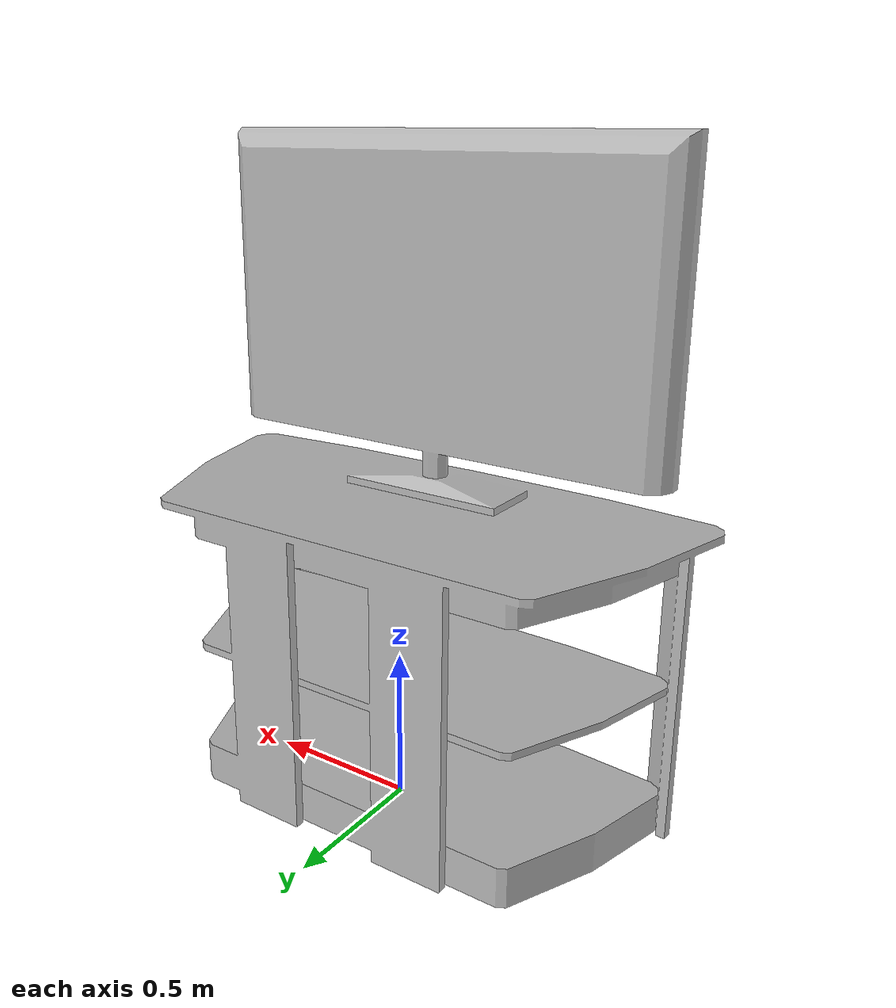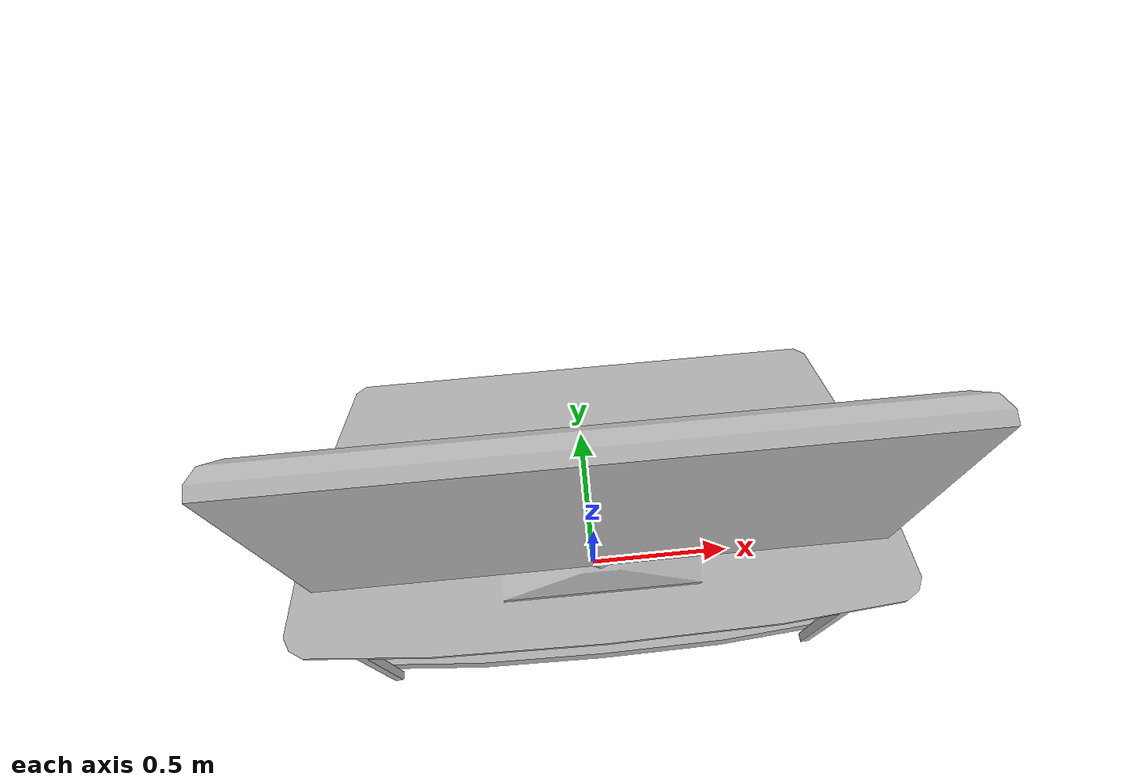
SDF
<?xml version="1.0" ?>
<sdf version="1.5">
  <model name="tv_stand">
    <static>true</static>
    <link name="link">
      <collision name="collision">
        <pose>0.001230 -0.018095 1.053145 0 0 0</pose>
        <geometry>
          <box>
            <size>1.802040 0.803547 2.112920</size>
          </box>
        </geometry>
      </collision>
      <visual name="visual">
        <geometry>
          <mesh>
            <uri>model://tv_stand/meshes/tv_stand.dae</uri>
            <scale>1.4 1.4 1.4</scale>
          </mesh>
        </geometry>
      </visual>
    </link>
  </model>
</sdf>
